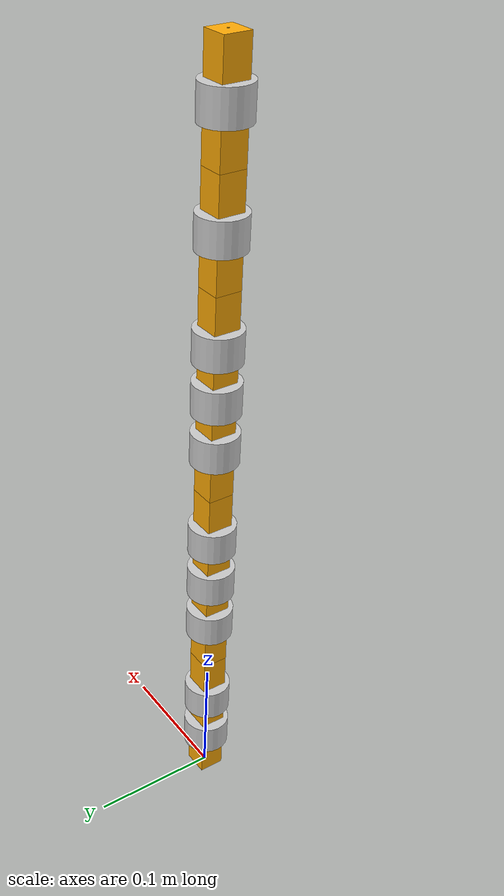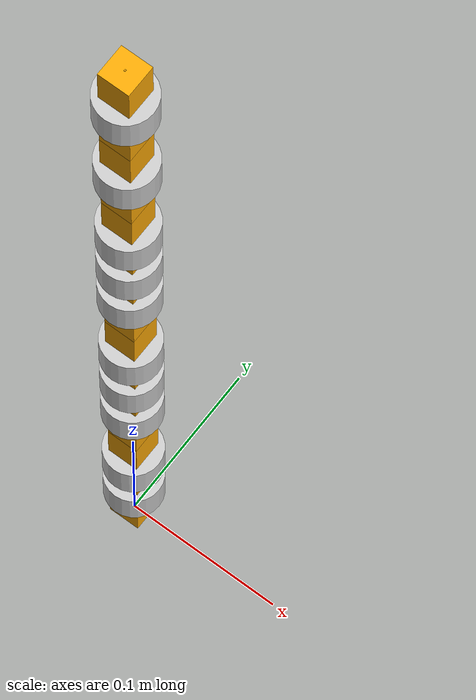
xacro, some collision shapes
<?xml version="1.0"?>
<robot name="fotokite" xmlns:xacro="http://www.ros.org/wiki/xacro">

    <!-- Imported elements -->

    <!-- First we import all posible elements defined in the urdf.xacro files. All these elements are defined as macro:xacros -->

    <!--Import Fotokite arm -->
    <xacro:include filename="$(find arm_description)/urdf/fotokite.urdf.xacro" />
    <xacro:include filename="$(find arm_description)/urdf/fotokite.gazebo" />

    <!--xacro:macro name="summit_xl"-->

        <link name="world"/>

        <!-- Fotokite -->
        <fotokite_arm parent="world">
                <origin xyz="0 0 0" rpy="0 0 0" />
        </fotokite_arm>

    <!--/xacro:macro-->

    <!--xacro:summit_xl/-->

</robot>

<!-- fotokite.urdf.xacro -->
<robot name="fotokite" xmlns:xacro="http://www.ros.org/wiki/xacro">

    <xacro:macro name="fotokite_arm" params="parent *origin">

        <xacro:property name="PI" value="3.14159265359"/>

        <!-- Joints Control in Gazebo -->

        <!-- Geometrical properties -->
        <xacro:property name="link_side"    value="0.02"/>
        <xacro:property name="joint_radius" value="0.018"/>
        <xacro:property name="joint_length" value="0.025"/>
        <xacro:property name="length"       value="0.04"/>

        <!-- Materials -->
        <material name="orange">
            <color rgba="1.00 0.67 0.02 1.00"/>
        </material>

        <material name="gray">
            <color rgba="0.80 0.80 0.80 1.00"/>
        </material>

        <!-- Generates a box visual/collision/inertial -->
        <xacro:macro name="prism_vci" params="side length mass:=1 *origin">
            <xacro:macro name="prism_geometry">
                <xacro:insert_block name="origin"/>
                <geometry>
                    <box size="${side} ${side} ${length}"/>
                </geometry>
            </xacro:macro>
            <visual>
                <xacro:prism_geometry/>
                <material name="orange"/>
            </visual>
            <collision>
                <xacro:prism_geometry/>
            </collision>

            <inertial>
                <xacro:insert_block name="origin"/>
                <mass value="${mass}"/>
                <inertia ixx="${(mass/12)*(side*side+length*length)}"
                         iyy="${(mass/12)*(side*side+length*length)}"
                         izz="${(mass/6)*(side*side)}"
                         ixy="0" ixz="0" iyz="0"/>
            </inertial>
        </xacro:macro>

        <!-- Generates a cylinder visual/collision -->
        <xacro:macro name="cylinder_vc" params="radius length *origin">
            <xacro:macro name="cylinder_geometry">
                <xacro:insert_block name="origin"/>
                <geometry>
                    <cylinder length="${length}" radius="${radius}"/>
                </geometry>
            </xacro:macro>
            <visual>
                <xacro:cylinder_geometry/>
                <material name="gray"/>
            </visual>
            <collision>
                <xacro:cylinder_geometry/>
            </collision>
        </xacro:macro>

        <!-- Generates child joint of parent -->
        <xacro:macro name="arm_joint" params="prefix parent child axis dist:=0 joint_type lower upper index">

        <!--xacro:unless value="${child == 'arm'}"-->
            <joint name="${prefix}_${parent}_${child}_joint" type="${joint_type}">
                <origin xyz="0 0 ${dist}" rpy="0 0 0"/>
                <parent link="${prefix}_${parent}"/>

                <xacro:if value="${index == 0}">
                    <child link="${prefix}_${child}"/>
                </xacro:if>

                <!--xacro:if value="${parent == 'length'}"-->
                    <xacro:if value="${index == 1}">
                        <child link="module_2_${child}"/>
                    </xacro:if>
                    <xacro:if value="${index == 2}">
                        <child link="module_3_${child}"/>
                    </xacro:if>
                    <xacro:if value="${index == 3}">
                        <child link="wrist_${child}"/>
                    </xacro:if>
                <!--/xacro:if-->

                <axis xyz="${axis}"/>

                <limit effort="40.0"
                       velocity="1.0"
                       lower="${lower}"
                       upper="${upper}"/>
            </joint>

            <!-- Transmission -->

            <!-- Links -->
            <link name="${prefix}_${parent}">

                <xacro:prism_vci length="${dist}" side="${link_side}">
                    <origin xyz="0 0 ${dist/2}" rpy="0 0 0"/>
                </xacro:prism_vci>

                <xacro:cylinder_vc radius="${joint_radius}" length="${joint_length}">

                    <xacro:if value="${axis=='0 0 1'}">
                        <origin xyz="0 0 ${dist}" rpy="0 0 0"/>
                    </xacro:if>
                    <xacro:if value="${axis=='1 0 0'}">
                        <origin xyz="0 0 ${dist}" rpy="0 ${PI/2} 0"/>
                    </xacro:if>
                    <xacro:if value="${axis=='0 1 0'}">
                        <origin xyz="0 0 ${dist}" rpy="${PI/2} 0 0"/>
                    </xacro:if>

                </xacro:cylinder_vc>

            </link>

            <gazebo reference="${prefix}_${parent}">
                <xacro:if value="${prefix == 'module_1'}">
                    <material>Gazebo/Orange</material>
                </xacro:if>
                <xacro:if value="${prefix == 'module_2'}">
                    <material>Gazebo/Blue</material>
                </xacro:if>
                <xacro:if value="${prefix == 'module_3'}">
                    <material>Gazebo/Yellow</material>
                </xacro:if>
                <xacro:if value="${prefix == 'wrist'}">
                    <material>Gazebo/Green</material>
                </xacro:if>

            </gazebo>

        </xacro:macro>

        <!-- Uncomment for RViz with fake joints -->
        <!-- Uncomment for Gazebo -->
        <!--link name="${parent}"/-->

        <!-- Uncomment for RViz with fake joints -->
        <!-- Uncomment for Gazebo -->
        <!-- Arm fixed to world frame  -->

        <!-- Joints Chain -->
        <xacro:arm_joint   prefix="module_1"    parent="yaw"      child="pitch"     axis="0 0 1" dist="${length}"  joint_type="revolute"   lower="${-PI}"      upper="${PI}"   index="0"/>
        <xacro:arm_joint   prefix="module_1"    parent="pitch"    child="roll"      axis="0 1 0" dist="${length}"  joint_type="revolute"   lower="${-PI}"      upper="${PI}"   index="0"/>
        <xacro:arm_joint   prefix="module_1"    parent="roll"     child="length"    axis="1 0 0" dist="${length}"  joint_type="revolute"   lower="${-PI}"      upper="${PI}"   index="0"/>
        <xacro:arm_joint   prefix="module_1"    parent="length"   child="yaw"       axis="0 0 1" dist="${length}"  joint_type="prismatic"  lower="0"           upper="2"       index="1"/>
        <xacro:arm_joint   prefix="module_2"    parent="yaw"      child="pitch"     axis="0 0 1" dist="${length}"  joint_type="revolute"   lower="${-PI}"      upper="${PI}"   index="0"/>
        <xacro:arm_joint   prefix="module_2"    parent="pitch"    child="roll"      axis="0 1 0" dist="${length}"  joint_type="revolute"   lower="${-PI}"      upper="${PI}"   index="0"/>
        <xacro:arm_joint   prefix="module_2"    parent="roll"     child="length"    axis="1 0 0" dist="${length}"  joint_type="revolute"   lower="${-PI}"      upper="${PI}"   index="0"/>
        <xacro:arm_joint   prefix="module_2"    parent="length"   child="yaw"       axis="0 0 1" dist="${length}"  joint_type="prismatic"  lower="0"           upper="2"       index="2"/>
        <xacro:arm_joint   prefix="module_3"    parent="yaw"      child="pitch"     axis="0 0 1" dist="${length}"  joint_type="revolute"   lower="${-PI}"      upper="${PI}"   index="0"/>
        <xacro:arm_joint   prefix="module_3"    parent="pitch"    child="roll"      axis="0 1 0" dist="${length}"  joint_type="revolute"   lower="${-PI}"      upper="${PI}"   index="0"/>
        <xacro:arm_joint   prefix="module_3"    parent="roll"     child="length"    axis="1 0 0" dist="${length}"  joint_type="revolute"   lower="${-PI}"      upper="${PI}"   index="0"/>
        <xacro:arm_joint   prefix="module_3"    parent="length"   child="pitch"     axis="0 0 1" dist="${length}"  joint_type="prismatic"  lower="0"           upper="2"       index="3"/>
        <xacro:arm_joint   prefix="wrist"       parent="pitch"    child="yaw"       axis="0 1 0" dist="${length}"  joint_type="revolute"   lower="${-PI}"      upper="${PI}"   index="0"/>
        <xacro:arm_joint   prefix="wrist"       parent="yaw"      child="roll"      axis="0 0 1" dist="${length}"  joint_type="revolute"   lower="${-PI}"      upper="${PI}"   index="0"/>
        <xacro:arm_joint   prefix="wrist"       parent="roll"     child="finger"    axis="1 0 0" dist="${length}"  joint_type="revolute"   lower="${-PI}"      upper="${PI}"   index="0"/>

        <link name="wrist_finger">
          <inertial>
            <mass value="1.477" />
            <origin xyz="0 0 0" />
            <inertia ixx="0.01152" ixy="0.0" ixz="0.0" iyy="0.01152" iyz="0.0" izz="0.0218" />
          </inertial>

          <visual>
            <origin xyz="0 0 0" rpy="0 0 0" />
            <geometry>
              <mesh filename="package://arm_description/meshes/ardrone.dae"/>
            </geometry>
          </visual>

          <collision>
            <origin xyz="0 0 0" rpy="0 0 0" />
            <geometry>
              <!--mesh filename="package://arm_description/urdf/ardrone.dae"/-->
              <box size="0.001 0.001 0.001"/>
            </geometry>
          </collision>
        </link>

        <joint name="${parent}_module_1_joint" type="fixed">
            <xacro:insert_block name="origin" />
            <parent link="${parent}"/>
            <child link="module_1_yaw"/>
        </joint>

    </xacro:macro>

</robot>
